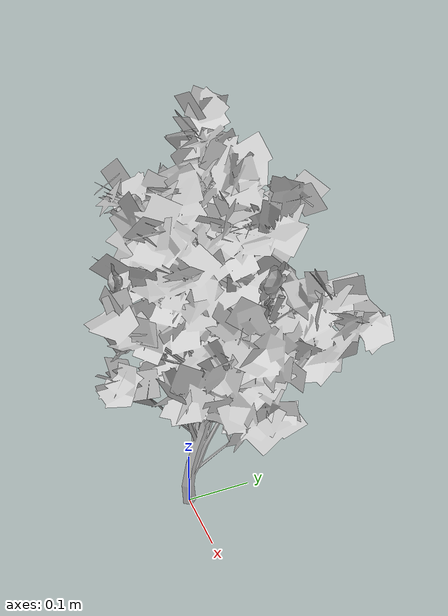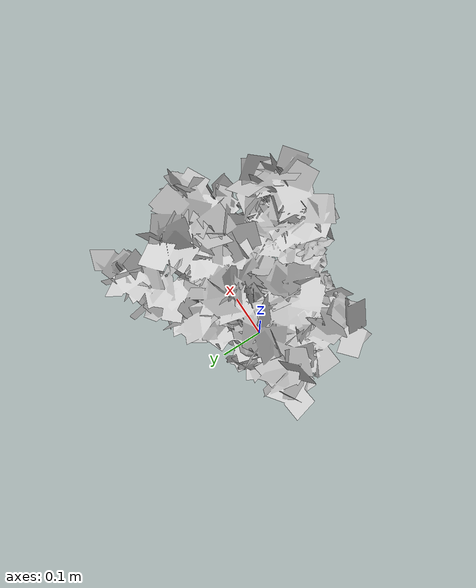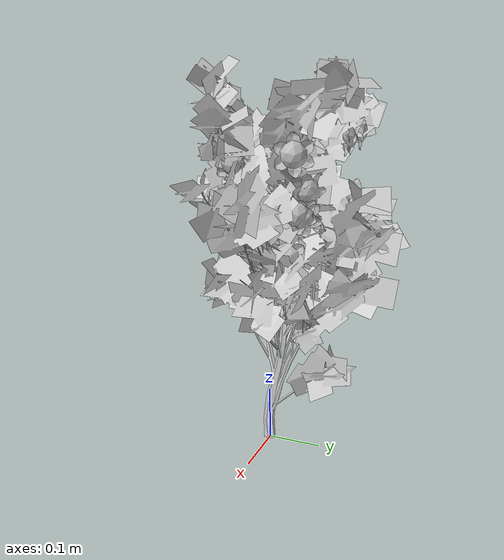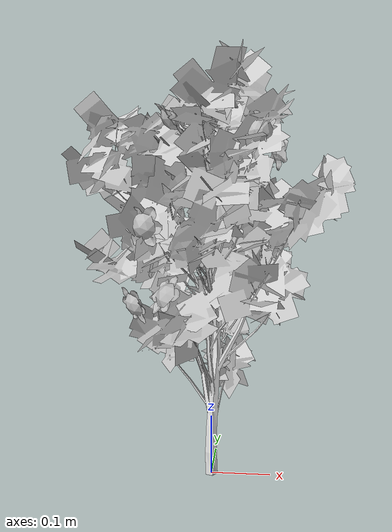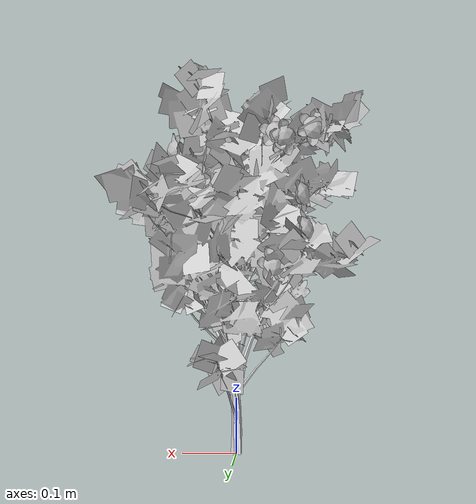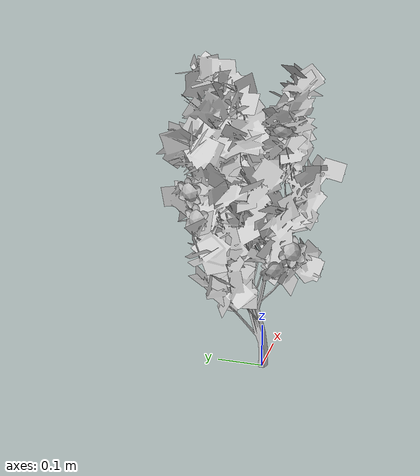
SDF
<?xml version="1.0" ?>
<sdf version="1.6">
  <model name="tree-flowers">
    <!--Skew-Seed:3120632194-->
    <static>true</static>
    <link name="link"/>
    <include>
      <uri>model://tree-mesh</uri>
      <pose>0 0 0 0 0 0</pose>
    </include>
    <joint name="tree_joint" type="fixed">
      <child>tree-mesh::link</child>
      <parent>link</parent>
    </joint>
    <include>
      <name>bramble_0</name>
      <uri>model://bramble</uri>
      <pose> -0.11275798179973728 -0.05082325075897014 0.30212899574567353 -3.810932263741251 1.0574663295037363 0.0</pose>
    </include>
    <joint name="flower_joint_0" type="fixed">
      <child>bramble_0::flower_link</child>
      <parent>link</parent>
    </joint>
    <include>
      <name>bramble_1</name>
      <uri>model://bramble</uri>
      <pose> -0.09174795456352289 0.11341341296878546 0.5657179457478334 -2.314668083740808 0.8209863573656281 0.0</pose>
    </include>
    <joint name="flower_joint_1" type="fixed">
      <child>bramble_1::flower_link</child>
      <parent>link</parent>
    </joint>
    <include>
      <name>bramble_2</name>
      <uri>model://bramble</uri>
      <pose> 0.07487914273225423 0.06847960754060364 0.38746456634744414 -0.04962150720628267 1.6004686728683883 0.0</pose>
    </include>
    <joint name="flower_joint_2" type="fixed">
      <child>bramble_2::flower_link</child>
      <parent>link</parent>
    </joint>
    <include>
      <name>bramble_3</name>
      <uri>model://bramble</uri>
      <pose> -0.07865420069136093 0.11469344010991712 0.5697132447459907 -1.8158241024973993 1.787358187460807 0.0</pose>
    </include>
    <joint name="flower_joint_3" type="fixed">
      <child>bramble_3::flower_link</child>
      <parent>link</parent>
    </joint>
    <include>
      <name>bramble_4</name>
      <uri>model://bramble</uri>
      <pose> -0.11511003503014297 0.121905420514861 0.4561341883816167 -2.738440333886268 1.6081783519120534 0.0</pose>
    </include>
    <joint name="flower_joint_4" type="fixed">
      <child>bramble_4::flower_link</child>
      <parent>link</parent>
    </joint>
    <include>
      <name>bramble_5</name>
      <uri>model://bramble</uri>
      <pose> 0.06168616910197891 0.0934357719399824 0.4930192298348709 -0.9847507773019721 2.0610014703727932 0.0</pose>
    </include>
    <joint name="flower_joint_5" type="fixed">
      <child>bramble_5::flower_link</child>
      <parent>link</parent>
    </joint>
    <include>
      <name>bramble_6</name>
      <uri>model://bramble</uri>
      <pose> 0.10275252878041133 0.08814745625045102 0.5510529736904646 -0.5121121742001158 1.5362368469512586 0.0</pose>
    </include>
    <joint name="flower_joint_6" type="fixed">
      <child>bramble_6::flower_link</child>
      <parent>link</parent>
    </joint>
    <include>
      <name>bramble_7</name>
      <uri>model://bramble</uri>
      <pose> -0.12172275322663921 0.10543912866297872 0.3975391009719143 -2.6977877112784987 1.8380905247354118 0.0</pose>
    </include>
    <joint name="flower_joint_7" type="fixed">
      <child>bramble_7::flower_link</child>
      <parent>link</parent>
    </joint>
    <include>
      <name>bramble_8</name>
      <uri>model://bramble</uri>
      <pose> 0.07627318749822218 -0.045217508063838056 0.5690369765315286 1.2202124026164038 1.2076410647905795 0.0</pose>
    </include>
    <joint name="flower_joint_8" type="fixed">
      <child>bramble_8::flower_link</child>
      <parent>link</parent>
    </joint>
    <include>
      <name>bramble_9</name>
      <uri>model://bramble</uri>
      <pose> -0.09542219342014632 -0.0724464032344151 0.4256646954703558 -4.399666922635432 1.1252134257102522 0.0</pose>
    </include>
    <joint name="flower_joint_9" type="fixed">
      <child>bramble_9::flower_link</child>
      <parent>link</parent>
    </joint>
    <include>
      <name>bramble_10</name>
      <uri>model://bramble</uri>
      <pose> -0.0694289498421432 0.06436363017339536 0.3392896575294624 -2.0234872406218054 1.9504602327216631 0.0</pose>
    </include>
    <joint name="flower_joint_10" type="fixed">
      <child>bramble_10::flower_link</child>
      <parent>link</parent>
    </joint>
    <include>
      <name>bramble_11</name>
      <uri>model://bramble</uri>
      <pose> -0.14137316710660547 0.1198628176030372 0.5754981781581023 -2.0142585202666634 1.3921468104393715 0.0</pose>
    </include>
    <joint name="flower_joint_11" type="fixed">
      <child>bramble_11::flower_link</child>
      <parent>link</parent>
    </joint>
    <include>
      <name>bramble_12</name>
      <uri>model://bramble</uri>
      <pose> 0.055345459128583255 -0.03551149587515983 0.5313214593028965 -0.18925772712193245 1.8324853161584953 0.0</pose>
    </include>
    <joint name="flower_joint_12" type="fixed">
      <child>bramble_12::flower_link</child>
      <parent>link</parent>
    </joint>
    <include>
      <name>bramble_13</name>
      <uri>model://bramble</uri>
      <pose> 0.07131167164732685 0.0809466184703108 0.45616936587137646 -0.5999329151631402 1.6299465527044834 0.0</pose>
    </include>
    <joint name="flower_joint_13" type="fixed">
      <child>bramble_13::flower_link</child>
      <parent>link</parent>
    </joint>
    <include>
      <name>bramble_14</name>
      <uri>model://bramble</uri>
      <pose> -0.052701547290591705 -0.05517490280562004 0.5930843660377727 -3.2392719043894536 0.8636906118465442 0.0</pose>
    </include>
    <joint name="flower_joint_14" type="fixed">
      <child>bramble_14::flower_link</child>
      <parent>link</parent>
    </joint>
    <include>
      <name>bramble_15</name>
      <uri>model://bramble</uri>
      <pose> 0.06332637746312941 0.08642184236958793 0.4496241644648582 -0.5402204330958561 1.8813275408342014 0.0</pose>
    </include>
    <joint name="flower_joint_15" type="fixed">
      <child>bramble_15::flower_link</child>
      <parent>link</parent>
    </joint>
    <include>
      <name>bramble_16</name>
      <uri>model://bramble</uri>
      <pose> -0.05879442168026176 -0.07540588777625179 0.3152329740848112 -3.794700559405855 2.207263652162699 0.0</pose>
    </include>
    <joint name="flower_joint_16" type="fixed">
      <child>bramble_16::flower_link</child>
      <parent>link</parent>
    </joint>
  </model>
</sdf>

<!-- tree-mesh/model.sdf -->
<sdf version="1.6">
  <model name="tree-mesh">
    <static>true</static>
    <link name="link">

      <collision name="collision">
        <geometry>
          <mesh>
            <uri>model://tree-mesh/meshes/new_tree.dae</uri>
            <scale>0.0625 0.0625 0.0625</scale>
          </mesh>
        </geometry>
      </collision>

      <!-- simplified collision for sake of speed since leaves shouldn't be blocking anyway -->

      <visual name="leaves">
        <geometry>
          <mesh>
            <uri>model://tree-mesh/meshes/leaves.dae</uri>
            <scale>0.0325 0.0325 0.0325</scale>
          </mesh>
        </geometry>
        <material>
          <script>
            <uri>model://tree-mesh/materials/scripts/</uri>
            <uri>model://tree-mesh/materials/textures/</uri>
            <name>NewTree/Branch</name>
          </script>
        </material>
      </visual>
      <visual name="bark">
        <geometry>
          <mesh>
            <uri>model://tree-mesh/meshes/bark.dae</uri>
            <scale>0.0325 0.0325 0.0325</scale>
          </mesh>
        </geometry>
        <material>
          <script>
            <uri>model://tree-mesh/materials/scripts/</uri>
            <uri>model://tree-mesh/materials/textures/</uri>
            <name>NewTree/Bark</name>
          </script>
        </material>
      </visual>
    </link>
  </model>
</sdf>

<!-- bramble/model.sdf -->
<sdf version="1.6">
  <model name="bramble-flower">
    <static>true</static>
    <link name="flower_link">
      <collision name="body_collision">
        <geometry>
          <mesh>
            <uri>model://bramble/meshes/bramble.dae</uri>
            <scale>0.4 0.4 0.4</scale>
          </mesh>
        </geometry>
      </collision>
      <visual name="petals">
        <geometry>
          <mesh>
            <uri>model://bramble/meshes/bramble.dae</uri>
            <scale>0.4 0.4 0.4</scale>
            <submesh>
              <name>petal</name>
            </submesh>
          </mesh>
        </geometry>
        <material>
          <script>
            <uri>model://bramble/materials/scripts/</uri>
            <uri>model://bramble/materials/textures/</uri>
            <name>Bramble/Petal</name>
          </script>
        </material>
      </visual>
      <visual name="carpel">
        <geometry>
          <mesh>
            <uri>model://bramble/meshes/bramble.dae</uri>
            <scale>0.4 0.4 0.4</scale>
            <submesh>
              <name>carpel</name>
            </submesh>
          </mesh>
        </geometry>
        <material>
          <script>
            <uri>model://bramble/materials/scripts/</uri>
            <uri>model://bramble/materials/textures/</uri>
            <name>Bramble/Carpel</name>
          </script>
        </material>
      </visual>
      <visual name="stamen">
        <geometry>
          <mesh>
            <uri>model://bramble/meshes/bramble.dae</uri>
            <scale>0.4 0.4 0.4</scale>
            <submesh>
              <name>stamen</name>
            </submesh>
          </mesh>
        </geometry>
        <material>
          <script>
            <uri>model://bramble/materials/scripts/</uri>
            <uri>model://bramble/materials/textures/</uri>
            <name>Bramble/Stamen</name>
          </script>
        </material>
      </visual>
    </link>
  </model>
</sdf>
